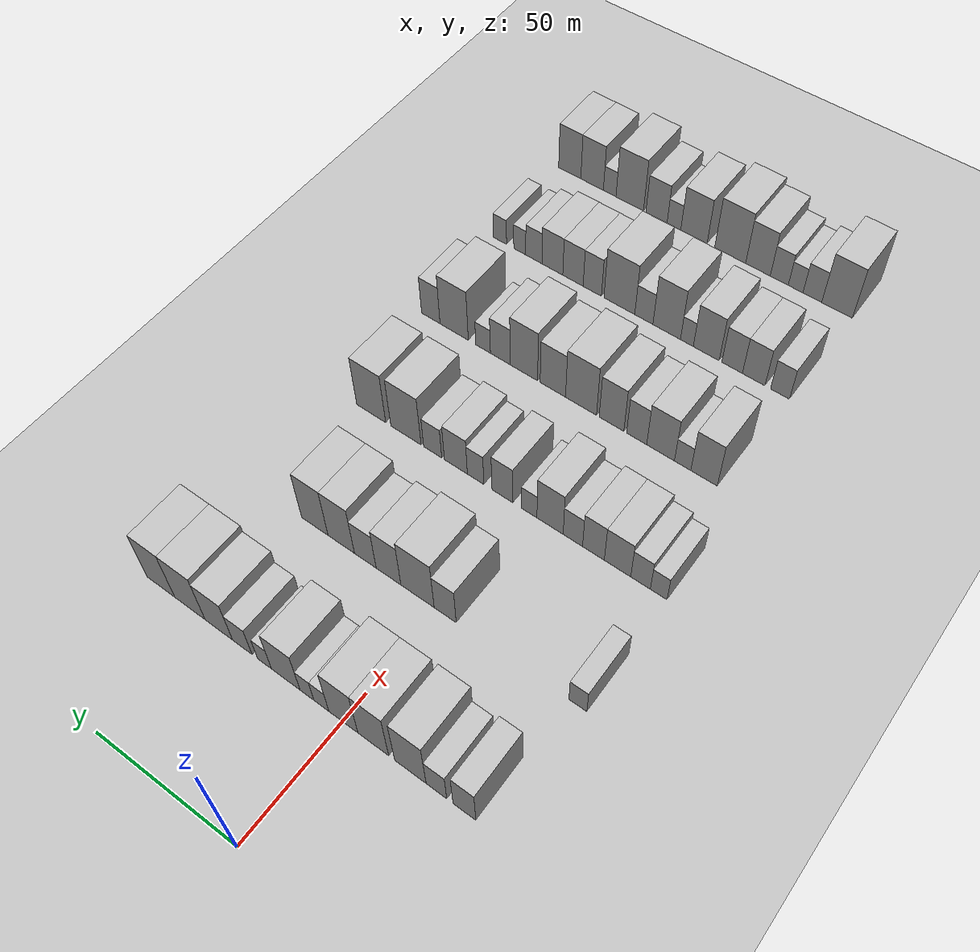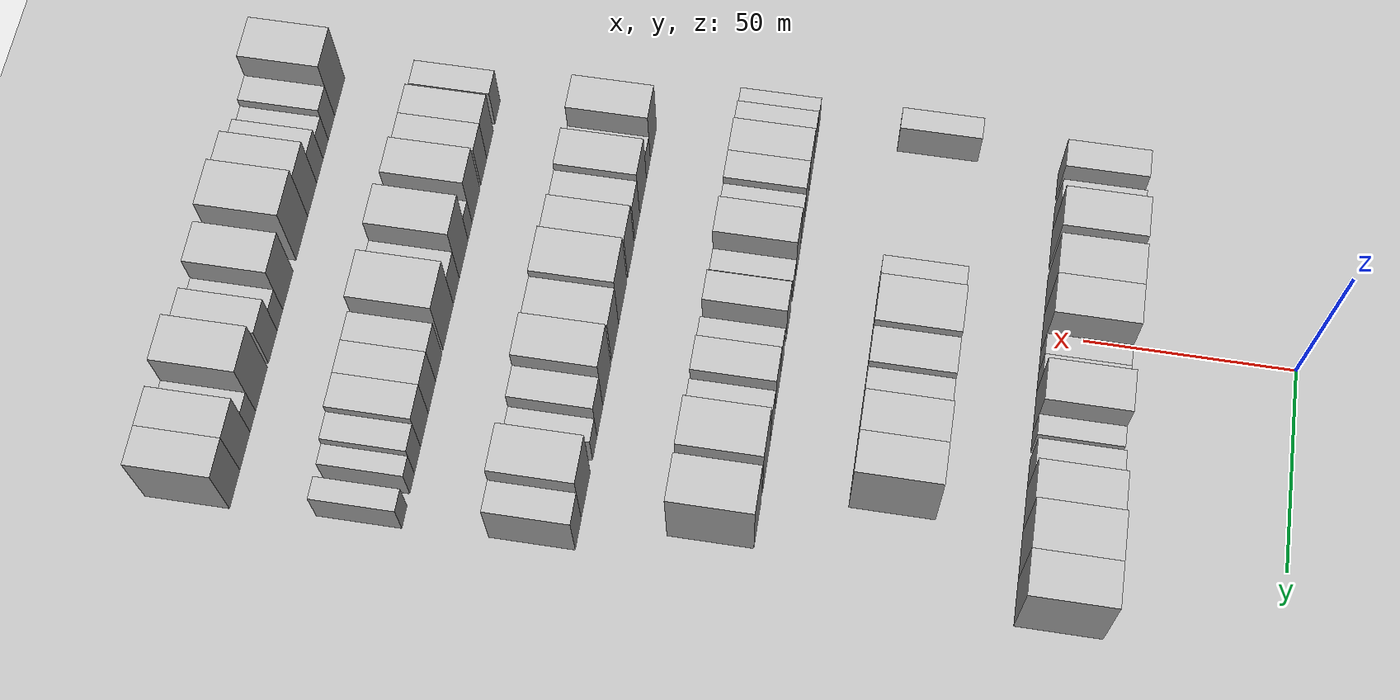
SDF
<sdf version="1.6">
 <world name="default">
  <include><name>ground_plane_1</name><uri>model://HANNAS_ground_plane</uri></include>
  <include>
   <name>ground_plane_2</name>
   <uri>model://HANNAS_ground_plane</uri>
   <pose>100 0 0  0 0 0</pose>
  </include>
  <model name="building_63">
   <static>1</static>
   <pose>50.0000 -40.3135 0 0.000000 0.000000 0.000000</pose>
   <link name="link">
    <pose>0 0 9.00 0 0 0</pose>
    <collision name="collision"><geometry><box><size>20.0000 7.2192 18.0000</size></box></geometry></collision>
    <visual name="visual">
     <cast_shadows>0</cast_shadows>
     <geometry><box><size>20.0000 7.2192 18.0000</size></box></geometry>
     <material>
      <script>
       <uri>model://HANNAS_wall/materials/scripts</uri>
       <uri>model://HANNAS_wall/materials/textures</uri>
       <name>vrc/HANNAS_wall</name>
      </script>
     </material>
    </visual>
   </link>
  </model>
  <model name="building_64">
   <static>1</static>
   <pose>50.0000 -31.3735 0 0.000000 0.000000 0.000000</pose>
   <link name="link">
    <pose>0 0 7.50 0 0 0</pose>
    <collision name="collision"><geometry><box><size>20.0000 6.6608 15.0000</size></box></geometry></collision>
    <visual name="visual">
     <cast_shadows>0</cast_shadows>
     <geometry><box><size>20.0000 6.6608 15.0000</size></box></geometry>
     <material>
      <script>
       <uri>model://HANNAS_wall/materials/scripts</uri>
       <uri>model://HANNAS_wall/materials/textures</uri>
       <name>vrc/HANNAS_wall</name>
      </script>
     </material>
    </visual>
   </link>
  </model>
  <model name="building_65">
   <static>1</static>
   <pose>50.0000 -22.8685 0 0.000000 0.000000 0.000000</pose>
   <link name="link">
    <pose>0 0 12.00 0 0 0</pose>
    <collision name="collision"><geometry><box><size>20.0000 10.3492 24.0000</size></box></geometry></collision>
    <visual name="visual">
     <cast_shadows>0</cast_shadows>
     <geometry><box><size>20.0000 10.3492 24.0000</size></box></geometry>
     <material>
      <script>
       <uri>model://HANNAS_wall/materials/scripts</uri>
       <uri>model://HANNAS_wall/materials/textures</uri>
       <name>vrc/HANNAS_wall</name>
      </script>
     </material>
    </visual>
   </link>
  </model>
  <model name="building_66">
   <static>1</static>
   <pose>50.0000 -10.5252 0 0.000000 0.000000 0.000000</pose>
   <link name="link">
    <pose>0 0 12.00 0 0 0</pose>
    <collision name="collision"><geometry><box><size>20.0000 10.3374 24.0000</size></box></geometry></collision>
    <visual name="visual">
     <cast_shadows>0</cast_shadows>
     <geometry><box><size>20.0000 10.3374 24.0000</size></box></geometry>
     <material>
      <script>
       <uri>model://HANNAS_wall/materials/scripts</uri>
       <uri>model://HANNAS_wall/materials/textures</uri>
       <name>vrc/HANNAS_wall</name>
      </script>
     </material>
    </visual>
   </link>
  </model>
  <model name="building_67">
   <static>1</static>
   <pose>50.0000 -0.3595 0 0.000000 0.000000 0.000000</pose>
   <link name="link">
    <pose>0 0 12.00 0 0 0</pose>
    <collision name="collision"><geometry><box><size>20.0000 9.9942 24.0000</size></box></geometry></collision>
    <visual name="visual">
     <cast_shadows>0</cast_shadows>
     <geometry><box><size>20.0000 9.9942 24.0000</size></box></geometry>
     <material>
      <script>
       <uri>model://HANNAS_wall/materials/scripts</uri>
       <uri>model://HANNAS_wall/materials/textures</uri>
       <name>vrc/HANNAS_wall</name>
      </script>
     </material>
    </visual>
   </link>
  </model>
  <model name="building_68">
   <static>1</static>
   <pose>50.0000 7.2241 0 0.000000 0.000000 0.000000</pose>
   <link name="link">
    <pose>0 0 6.00 0 0 0</pose>
    <collision name="collision"><geometry><box><size>20.0000 5.1729 12.0000</size></box></geometry></collision>
    <visual name="visual">
     <cast_shadows>0</cast_shadows>
     <geometry><box><size>20.0000 5.1729 12.0000</size></box></geometry>
     <material>
      <script>
       <uri>model://HANNAS_wall/materials/scripts</uri>
       <uri>model://HANNAS_wall/materials/textures</uri>
       <name>vrc/HANNAS_wall</name>
      </script>
     </material>
    </visual>
   </link>
  </model>
  <model name="building_69">
   <static>1</static>
   <pose>50.0000 12.2758 0 0.000000 0.000000 0.000000</pose>
   <link name="link">
    <pose>0 0 6.00 0 0 0</pose>
    <collision name="collision"><geometry><box><size>20.0000 4.9305 12.0000</size></box></geometry></collision>
    <visual name="visual">
     <cast_shadows>0</cast_shadows>
     <geometry><box><size>20.0000 4.9305 12.0000</size></box></geometry>
     <material>
      <script>
       <uri>model://HANNAS_wall/materials/scripts</uri>
       <uri>model://HANNAS_wall/materials/textures</uri>
       <name>vrc/HANNAS_wall</name>
      </script>
     </material>
    </visual>
   </link>
  </model>
  <model name="building_70">
   <static>1</static>
   <pose>50.0000 19.8492 0 0.000000 0.000000 0.000000</pose>
   <link name="link">
    <pose>0 0 10.50 0 0 0</pose>
    <collision name="collision"><geometry><box><size>20.0000 10.2163 21.0000</size></box></geometry></collision>
    <visual name="visual">
     <cast_shadows>0</cast_shadows>
     <geometry><box><size>20.0000 10.2163 21.0000</size></box></geometry>
     <material>
      <script>
       <uri>model://HANNAS_wall/materials/scripts</uri>
       <uri>model://HANNAS_wall/materials/textures</uri>
       <name>vrc/HANNAS_wall</name>
      </script>
     </material>
    </visual>
   </link>
  </model>
  <model name="building_71">
   <static>1</static>
   <pose>50.0000 27.4786 0 0.000000 0.000000 0.000000</pose>
   <link name="link">
    <pose>0 0 6.00 0 0 0</pose>
    <collision name="collision"><geometry><box><size>20.0000 5.0426 12.0000</size></box></geometry></collision>
    <visual name="visual">
     <cast_shadows>0</cast_shadows>
     <geometry><box><size>20.0000 5.0426 12.0000</size></box></geometry>
     <material>
      <script>
       <uri>model://HANNAS_wall/materials/scripts</uri>
       <uri>model://HANNAS_wall/materials/textures</uri>
       <name>vrc/HANNAS_wall</name>
      </script>
     </material>
    </visual>
   </link>
  </model>
  <model name="building_72">
   <static>1</static>
   <pose>50.0000 35.5905 0 0.000000 0.000000 0.000000</pose>
   <link name="link">
    <pose>0 0 7.50 0 0 0</pose>
    <collision name="collision"><geometry><box><size>20.0000 7.1812 15.0000</size></box></geometry></collision>
    <visual name="visual">
     <cast_shadows>0</cast_shadows>
     <geometry><box><size>20.0000 7.1812 15.0000</size></box></geometry>
     <material>
      <script>
       <uri>model://HANNAS_wall/materials/scripts</uri>
       <uri>model://HANNAS_wall/materials/textures</uri>
       <name>vrc/HANNAS_wall</name>
      </script>
     </material>
    </visual>
   </link>
  </model>
  <model name="building_73">
   <static>1</static>
   <pose>50.0000 44.3305 0 0.000000 0.000000 0.000000</pose>
   <link name="link">
    <pose>0 0 10.50 0 0 0</pose>
    <collision name="collision"><geometry><box><size>20.0000 10.2987 21.0000</size></box></geometry></collision>
    <visual name="visual">
     <cast_shadows>0</cast_shadows>
     <geometry><box><size>20.0000 10.2987 21.0000</size></box></geometry>
     <material>
      <script>
       <uri>model://HANNAS_wall/materials/scripts</uri>
       <uri>model://HANNAS_wall/materials/textures</uri>
       <name>vrc/HANNAS_wall</name>
      </script>
     </material>
    </visual>
   </link>
  </model>
  <model name="building_74">
   <static>1</static>
   <pose>50.0000 55.2970 0 0.000000 0.000000 0.000000</pose>
   <link name="link">
    <pose>0 0 12.00 0 0 0</pose>
    <collision name="collision"><geometry><box><size>20.0000 11.6342 24.0000</size></box></geometry></collision>
    <visual name="visual">
     <cast_shadows>0</cast_shadows>
     <geometry><box><size>20.0000 11.6342 24.0000</size></box></geometry>
     <material>
      <script>
       <uri>model://HANNAS_wall/materials/scripts</uri>
       <uri>model://HANNAS_wall/materials/textures</uri>
       <name>vrc/HANNAS_wall</name>
      </script>
     </material>
    </visual>
   </link>
  </model>
  <model name="building_75">
   <static>1</static>
   <pose>50.0000 66.5046 0 0.000000 0.000000 0.000000</pose>
   <link name="link">
    <pose>0 0 12.00 0 0 0</pose>
    <collision name="collision"><geometry><box><size>20.0000 10.7811 24.0000</size></box></geometry></collision>
    <visual name="visual">
     <cast_shadows>0</cast_shadows>
     <geometry><box><size>20.0000 10.7811 24.0000</size></box></geometry>
     <material>
      <script>
       <uri>model://HANNAS_wall/materials/scripts</uri>
       <uri>model://HANNAS_wall/materials/textures</uri>
       <name>vrc/HANNAS_wall</name>
      </script>
     </material>
    </visual>
   </link>
  </model>
  <model name="building_198">
   <static>1</static>
   <pose>90.0000 -47.3290 0 0.000000 0.000000 0.000000</pose>
   <link name="link">
    <pose>0 0 6.00 0 0 0</pose>
    <collision name="collision"><geometry><box><size>20.0000 5.7841 12.0000</size></box></geometry></collision>
    <visual name="visual">
     <cast_shadows>0</cast_shadows>
     <geometry><box><size>20.0000 5.7841 12.0000</size></box></geometry>
     <material>
      <script>
       <uri>model://HANNAS_wall/materials/scripts</uri>
       <uri>model://HANNAS_wall/materials/textures</uri>
       <name>vrc/HANNAS_wall</name>
      </script>
     </material>
    </visual>
   </link>
  </model>
  <model name="building_199">
   <static>1</static>
   <pose>90.0000 -2.9000 0 0.000000 0.000000 0.000000</pose>
   <link name="link">
    <pose>0 0 9.00 0 0 0</pose>
    <collision name="collision"><geometry><box><size>20.0000 7.6913 18.0000</size></box></geometry></collision>
    <visual name="visual">
     <cast_shadows>0</cast_shadows>
     <geometry><box><size>20.0000 7.6913 18.0000</size></box></geometry>
     <material>
      <script>
       <uri>model://HANNAS_wall/materials/scripts</uri>
       <uri>model://HANNAS_wall/materials/textures</uri>
       <name>vrc/HANNAS_wall</name>
      </script>
     </material>
    </visual>
   </link>
  </model>
  <model name="building_200">
   <static>1</static>
   <pose>90.0000 6.8621 0 0.000000 0.000000 0.000000</pose>
   <link name="link">
    <pose>0 0 12.00 0 0 0</pose>
    <collision name="collision"><geometry><box><size>20.0000 11.8329 24.0000</size></box></geometry></collision>
    <visual name="visual">
     <cast_shadows>0</cast_shadows>
     <geometry><box><size>20.0000 11.8329 24.0000</size></box></geometry>
     <material>
      <script>
       <uri>model://HANNAS_wall/materials/scripts</uri>
       <uri>model://HANNAS_wall/materials/textures</uri>
       <name>vrc/HANNAS_wall</name>
      </script>
     </material>
    </visual>
   </link>
  </model>
  <model name="building_201">
   <static>1</static>
   <pose>90.0000 17.2681 0 0.000000 0.000000 0.000000</pose>
   <link name="link">
    <pose>0 0 10.50 0 0 0</pose>
    <collision name="collision"><geometry><box><size>20.0000 8.9790 21.0000</size></box></geometry></collision>
    <visual name="visual">
     <cast_shadows>0</cast_shadows>
     <geometry><box><size>20.0000 8.9790 21.0000</size></box></geometry>
     <material>
      <script>
       <uri>model://HANNAS_wall/materials/scripts</uri>
       <uri>model://HANNAS_wall/materials/textures</uri>
       <name>vrc/HANNAS_wall</name>
      </script>
     </material>
    </visual>
   </link>
  </model>
  <model name="building_202">
   <static>1</static>
   <pose>90.0000 25.7555 0 0.000000 0.000000 0.000000</pose>
   <link name="link">
    <pose>0 0 9.00 0 0 0</pose>
    <collision name="collision"><geometry><box><size>20.0000 7.9957 18.0000</size></box></geometry></collision>
    <visual name="visual">
     <cast_shadows>0</cast_shadows>
     <geometry><box><size>20.0000 7.9957 18.0000</size></box></geometry>
     <material>
      <script>
       <uri>model://HANNAS_wall/materials/scripts</uri>
       <uri>model://HANNAS_wall/materials/textures</uri>
       <name>vrc/HANNAS_wall</name>
      </script>
     </material>
    </visual>
   </link>
  </model>
  <model name="building_203">
   <static>1</static>
   <pose>90.0000 34.6981 0 0.000000 0.000000 0.000000</pose>
   <link name="link">
    <pose>0 0 12.00 0 0 0</pose>
    <collision name="collision"><geometry><box><size>20.0000 9.8894 24.0000</size></box></geometry></collision>
    <visual name="visual">
     <cast_shadows>0</cast_shadows>
     <geometry><box><size>20.0000 9.8894 24.0000</size></box></geometry>
     <material>
      <script>
       <uri>model://HANNAS_wall/materials/scripts</uri>
       <uri>model://HANNAS_wall/materials/textures</uri>
       <name>vrc/HANNAS_wall</name>
      </script>
     </material>
    </visual>
   </link>
  </model>
  <model name="building_204">
   <static>1</static>
   <pose>90.0000 44.6729 0 0.000000 0.000000 0.000000</pose>
   <link name="link">
    <pose>0 0 12.00 0 0 0</pose>
    <collision name="collision"><geometry><box><size>20.0000 10.0603 24.0000</size></box></geometry></collision>
    <visual name="visual">
     <cast_shadows>0</cast_shadows>
     <geometry><box><size>20.0000 10.0603 24.0000</size></box></geometry>
     <material>
      <script>
       <uri>model://HANNAS_wall/materials/scripts</uri>
       <uri>model://HANNAS_wall/materials/textures</uri>
       <name>vrc/HANNAS_wall</name>
      </script>
     </material>
    </visual>
   </link>
  </model>
  <model name="building_330">
   <static>1</static>
   <pose>130.0000 -47.0130 0 0.000000 0.000000 0.000000</pose>
   <link name="link">
    <pose>0 0 6.00 0 0 0</pose>
    <collision name="collision"><geometry><box><size>20.0000 5.5264 12.0000</size></box></geometry></collision>
    <visual name="visual">
     <cast_shadows>0</cast_shadows>
     <geometry><box><size>20.0000 5.5264 12.0000</size></box></geometry>
     <material>
      <script>
       <uri>model://HANNAS_wall/materials/scripts</uri>
       <uri>model://HANNAS_wall/materials/textures</uri>
       <name>vrc/HANNAS_wall</name>
      </script>
     </material>
    </visual>
   </link>
  </model>
  <model name="building_331">
   <static>1</static>
   <pose>130.0000 -40.9860 0 0.000000 0.000000 0.000000</pose>
   <link name="link">
    <pose>0 0 7.50 0 0 0</pose>
    <collision name="collision"><geometry><box><size>20.0000 6.5276 15.0000</size></box></geometry></collision>
    <visual name="visual">
     <cast_shadows>0</cast_shadows>
     <geometry><box><size>20.0000 6.5276 15.0000</size></box></geometry>
     <material>
      <script>
       <uri>model://HANNAS_wall/materials/scripts</uri>
       <uri>model://HANNAS_wall/materials/textures</uri>
       <name>vrc/HANNAS_wall</name>
      </script>
     </material>
    </visual>
   </link>
  </model>
  <model name="building_332">
   <static>1</static>
   <pose>130.0000 -33.2503 0 0.000000 0.000000 0.000000</pose>
   <link name="link">
    <pose>0 0 9.00 0 0 0</pose>
    <collision name="collision"><geometry><box><size>20.0000 8.9437 18.0000</size></box></geometry></collision>
    <visual name="visual">
     <cast_shadows>0</cast_shadows>
     <geometry><box><size>20.0000 8.9437 18.0000</size></box></geometry>
     <material>
      <script>
       <uri>model://HANNAS_wall/materials/scripts</uri>
       <uri>model://HANNAS_wall/materials/textures</uri>
       <name>vrc/HANNAS_wall</name>
      </script>
     </material>
    </visual>
   </link>
  </model>
  <model name="building_333">
   <static>1</static>
   <pose>130.0000 -25.0436 0 0.000000 0.000000 0.000000</pose>
   <link name="link">
    <pose>0 0 9.00 0 0 0</pose>
    <collision name="collision"><geometry><box><size>20.0000 7.4699 18.0000</size></box></geometry></collision>
    <visual name="visual">
     <cast_shadows>0</cast_shadows>
     <geometry><box><size>20.0000 7.4699 18.0000</size></box></geometry>
     <material>
      <script>
       <uri>model://HANNAS_wall/materials/scripts</uri>
       <uri>model://HANNAS_wall/materials/textures</uri>
       <name>vrc/HANNAS_wall</name>
      </script>
     </material>
    </visual>
   </link>
  </model>
  <model name="building_334">
   <static>1</static>
   <pose>130.0000 -17.9359 0 0.000000 0.000000 0.000000</pose>
   <link name="link">
    <pose>0 0 7.50 0 0 0</pose>
    <collision name="collision"><geometry><box><size>20.0000 6.7455 15.0000</size></box></geometry></collision>
    <visual name="visual">
     <cast_shadows>0</cast_shadows>
     <geometry><box><size>20.0000 6.7455 15.0000</size></box></geometry>
     <material>
      <script>
       <uri>model://HANNAS_wall/materials/scripts</uri>
       <uri>model://HANNAS_wall/materials/textures</uri>
       <name>vrc/HANNAS_wall</name>
      </script>
     </material>
    </visual>
   </link>
  </model>
  <model name="building_335">
   <static>1</static>
   <pose>130.0000 -9.9310 0 0.000000 0.000000 0.000000</pose>
   <link name="link">
    <pose>0 0 10.50 0 0 0</pose>
    <collision name="collision"><geometry><box><size>20.0000 9.2642 21.0000</size></box></geometry></collision>
    <visual name="visual">
     <cast_shadows>0</cast_shadows>
     <geometry><box><size>20.0000 9.2642 21.0000</size></box></geometry>
     <material>
      <script>
       <uri>model://HANNAS_wall/materials/scripts</uri>
       <uri>model://HANNAS_wall/materials/textures</uri>
       <name>vrc/HANNAS_wall</name>
      </script>
     </material>
    </visual>
   </link>
  </model>
  <model name="building_336">
   <static>1</static>
   <pose>130.0000 -2.4936 0 0.000000 0.000000 0.000000</pose>
   <link name="link">
    <pose>0 0 6.00 0 0 0</pose>
    <collision name="collision"><geometry><box><size>20.0000 5.6105 12.0000</size></box></geometry></collision>
    <visual name="visual">
     <cast_shadows>0</cast_shadows>
     <geometry><box><size>20.0000 5.6105 12.0000</size></box></geometry>
     <material>
      <script>
       <uri>model://HANNAS_wall/materials/scripts</uri>
       <uri>model://HANNAS_wall/materials/textures</uri>
       <name>vrc/HANNAS_wall</name>
      </script>
     </material>
    </visual>
   </link>
  </model>
  <model name="building_337">
   <static>1</static>
   <pose>130.0000 7.1170 0 0.000000 0.000000 0.000000</pose>
   <link name="link">
    <pose>0 0 9.00 0 0 0</pose>
    <collision name="collision"><geometry><box><size>20.0000 7.6108 18.0000</size></box></geometry></collision>
    <visual name="visual">
     <cast_shadows>0</cast_shadows>
     <geometry><box><size>20.0000 7.6108 18.0000</size></box></geometry>
     <material>
      <script>
       <uri>model://HANNAS_wall/materials/scripts</uri>
       <uri>model://HANNAS_wall/materials/textures</uri>
       <name>vrc/HANNAS_wall</name>
      </script>
     </material>
    </visual>
   </link>
  </model>
  <model name="building_338">
   <static>1</static>
   <pose>130.0000 16.9801 0 0.000000 0.000000 0.000000</pose>
   <link name="link">
    <pose>0 0 7.50 0 0 0</pose>
    <collision name="collision"><geometry><box><size>20.0000 6.1153 15.0000</size></box></geometry></collision>
    <visual name="visual">
     <cast_shadows>0</cast_shadows>
     <geometry><box><size>20.0000 6.1153 15.0000</size></box></geometry>
     <material>
      <script>
       <uri>model://HANNAS_wall/materials/scripts</uri>
       <uri>model://HANNAS_wall/materials/textures</uri>
       <name>vrc/HANNAS_wall</name>
      </script>
     </material>
    </visual>
   </link>
  </model>
  <model name="building_339">
   <static>1</static>
   <pose>130.0000 24.3437 0 0.000000 0.000000 0.000000</pose>
   <link name="link">
    <pose>0 0 9.00 0 0 0</pose>
    <collision name="collision"><geometry><box><size>20.0000 8.6120 18.0000</size></box></geometry></collision>
    <visual name="visual">
     <cast_shadows>0</cast_shadows>
     <geometry><box><size>20.0000 8.6120 18.0000</size></box></geometry>
     <material>
      <script>
       <uri>model://HANNAS_wall/materials/scripts</uri>
       <uri>model://HANNAS_wall/materials/textures</uri>
       <name>vrc/HANNAS_wall</name>
      </script>
     </material>
    </visual>
   </link>
  </model>
  <model name="building_340">
   <static>1</static>
   <pose>130.0000 33.0859 0 0.000000 0.000000 0.000000</pose>
   <link name="link">
    <pose>0 0 7.50 0 0 0</pose>
    <collision name="collision"><geometry><box><size>20.0000 6.8724 15.0000</size></box></geometry></collision>
    <visual name="visual">
     <cast_shadows>0</cast_shadows>
     <geometry><box><size>20.0000 6.8724 15.0000</size></box></geometry>
     <material>
      <script>
       <uri>model://HANNAS_wall/materials/scripts</uri>
       <uri>model://HANNAS_wall/materials/textures</uri>
       <name>vrc/HANNAS_wall</name>
      </script>
     </material>
    </visual>
   </link>
  </model>
  <model name="building_341">
   <static>1</static>
   <pose>130.0000 43.3947 0 0.000000 0.000000 0.000000</pose>
   <link name="link">
    <pose>0 0 12.00 0 0 0</pose>
    <collision name="collision"><geometry><box><size>20.0000 11.7452 24.0000</size></box></geometry></collision>
    <visual name="visual">
     <cast_shadows>0</cast_shadows>
     <geometry><box><size>20.0000 11.7452 24.0000</size></box></geometry>
     <material>
      <script>
       <uri>model://HANNAS_wall/materials/scripts</uri>
       <uri>model://HANNAS_wall/materials/textures</uri>
       <name>vrc/HANNAS_wall</name>
      </script>
     </material>
    </visual>
   </link>
  </model>
  <model name="building_342">
   <static>1</static>
   <pose>130.0000 57.0087 0 0.000000 0.000000 0.000000</pose>
   <link name="link">
    <pose>0 0 12.00 0 0 0</pose>
    <collision name="collision"><geometry><box><size>20.0000 11.4830 24.0000</size></box></geometry></collision>
    <visual name="visual">
     <cast_shadows>0</cast_shadows>
     <geometry><box><size>20.0000 11.4830 24.0000</size></box></geometry>
     <material>
      <script>
       <uri>model://HANNAS_wall/materials/scripts</uri>
       <uri>model://HANNAS_wall/materials/textures</uri>
       <name>vrc/HANNAS_wall</name>
      </script>
     </material>
    </visual>
   </link>
  </model>
  <model name="building_463">
   <static>1</static>
   <pose>170.0000 -37.2655 0 0.000000 0.000000 0.000000</pose>
   <link name="link">
    <pose>0 0 10.50 0 0 0</pose>
    <collision name="collision"><geometry><box><size>20.0000 9.1495 21.0000</size></box></geometry></collision>
    <visual name="visual">
     <cast_shadows>0</cast_shadows>
     <geometry><box><size>20.0000 9.1495 21.0000</size></box></geometry>
     <material>
      <script>
       <uri>model://HANNAS_wall/materials/scripts</uri>
       <uri>model://HANNAS_wall/materials/textures</uri>
       <name>vrc/HANNAS_wall</name>
      </script>
     </material>
    </visual>
   </link>
  </model>
  <model name="building_464">
   <static>1</static>
   <pose>170.0000 -29.8364 0 0.000000 0.000000 0.000000</pose>
   <link name="link">
    <pose>0 0 6.00 0 0 0</pose>
    <collision name="collision"><geometry><box><size>20.0000 5.7087 12.0000</size></box></geometry></collision>
    <visual name="visual">
     <cast_shadows>0</cast_shadows>
     <geometry><box><size>20.0000 5.7087 12.0000</size></box></geometry>
     <material>
      <script>
       <uri>model://HANNAS_wall/materials/scripts</uri>
       <uri>model://HANNAS_wall/materials/textures</uri>
       <name>vrc/HANNAS_wall</name>
      </script>
     </material>
    </visual>
   </link>
  </model>
  <model name="building_465">
   <static>1</static>
   <pose>170.0000 -22.0622 0 0.000000 0.000000 0.000000</pose>
   <link name="link">
    <pose>0 0 10.50 0 0 0</pose>
    <collision name="collision"><geometry><box><size>20.0000 9.8398 21.0000</size></box></geometry></collision>
    <visual name="visual">
     <cast_shadows>0</cast_shadows>
     <geometry><box><size>20.0000 9.8398 21.0000</size></box></geometry>
     <material>
      <script>
       <uri>model://HANNAS_wall/materials/scripts</uri>
       <uri>model://HANNAS_wall/materials/textures</uri>
       <name>vrc/HANNAS_wall</name>
      </script>
     </material>
    </visual>
   </link>
  </model>
  <model name="building_466">
   <static>1</static>
   <pose>170.0000 -13.5358 0 0.000000 0.000000 0.000000</pose>
   <link name="link">
    <pose>0 0 9.00 0 0 0</pose>
    <collision name="collision"><geometry><box><size>20.0000 7.2129 18.0000</size></box></geometry></collision>
    <visual name="visual">
     <cast_shadows>0</cast_shadows>
     <geometry><box><size>20.0000 7.2129 18.0000</size></box></geometry>
     <material>
      <script>
       <uri>model://HANNAS_wall/materials/scripts</uri>
       <uri>model://HANNAS_wall/materials/textures</uri>
       <name>vrc/HANNAS_wall</name>
      </script>
     </material>
    </visual>
   </link>
  </model>
  <model name="building_467">
   <static>1</static>
   <pose>170.0000 -4.4265 0 0.000000 0.000000 0.000000</pose>
   <link name="link">
    <pose>0 0 10.50 0 0 0</pose>
    <collision name="collision"><geometry><box><size>20.0000 9.0056 21.0000</size></box></geometry></collision>
    <visual name="visual">
     <cast_shadows>0</cast_shadows>
     <geometry><box><size>20.0000 9.0056 21.0000</size></box></geometry>
     <material>
      <script>
       <uri>model://HANNAS_wall/materials/scripts</uri>
       <uri>model://HANNAS_wall/materials/textures</uri>
       <name>vrc/HANNAS_wall</name>
      </script>
     </material>
    </visual>
   </link>
  </model>
  <model name="building_468">
   <static>1</static>
   <pose>170.0000 6.8356 0 0.000000 0.000000 0.000000</pose>
   <link name="link">
    <pose>0 0 12.00 0 0 0</pose>
    <collision name="collision"><geometry><box><size>20.0000 11.5188 24.0000</size></box></geometry></collision>
    <visual name="visual">
     <cast_shadows>0</cast_shadows>
     <geometry><box><size>20.0000 11.5188 24.0000</size></box></geometry>
     <material>
      <script>
       <uri>model://HANNAS_wall/materials/scripts</uri>
       <uri>model://HANNAS_wall/materials/textures</uri>
       <name>vrc/HANNAS_wall</name>
      </script>
     </material>
    </visual>
   </link>
  </model>
  <model name="building_469">
   <static>1</static>
   <pose>170.0000 17.4008 0 0.000000 0.000000 0.000000</pose>
   <link name="link">
    <pose>0 0 10.50 0 0 0</pose>
    <collision name="collision"><geometry><box><size>20.0000 9.6115 21.0000</size></box></geometry></collision>
    <visual name="visual">
     <cast_shadows>0</cast_shadows>
     <geometry><box><size>20.0000 9.6115 21.0000</size></box></geometry>
     <material>
      <script>
       <uri>model://HANNAS_wall/materials/scripts</uri>
       <uri>model://HANNAS_wall/materials/textures</uri>
       <name>vrc/HANNAS_wall</name>
      </script>
     </material>
    </visual>
   </link>
  </model>
  <model name="building_470">
   <static>1</static>
   <pose>170.0000 28.4941 0 0.000000 0.000000 0.000000</pose>
   <link name="link">
    <pose>0 0 12.00 0 0 0</pose>
    <collision name="collision"><geometry><box><size>20.0000 10.5752 24.0000</size></box></geometry></collision>
    <visual name="visual">
     <cast_shadows>0</cast_shadows>
     <geometry><box><size>20.0000 10.5752 24.0000</size></box></geometry>
     <material>
      <script>
       <uri>model://HANNAS_wall/materials/scripts</uri>
       <uri>model://HANNAS_wall/materials/textures</uri>
       <name>vrc/HANNAS_wall</name>
      </script>
     </material>
    </visual>
   </link>
  </model>
  <model name="building_471">
   <static>1</static>
   <pose>170.0000 37.6404 0 0.000000 0.000000 0.000000</pose>
   <link name="link">
    <pose>0 0 9.00 0 0 0</pose>
    <collision name="collision"><geometry><box><size>20.0000 7.7175 18.0000</size></box></geometry></collision>
    <visual name="visual">
     <cast_shadows>0</cast_shadows>
     <geometry><box><size>20.0000 7.7175 18.0000</size></box></geometry>
     <material>
      <script>
       <uri>model://HANNAS_wall/materials/scripts</uri>
       <uri>model://HANNAS_wall/materials/textures</uri>
       <name>vrc/HANNAS_wall</name>
      </script>
     </material>
    </visual>
   </link>
  </model>
  <model name="building_472">
   <static>1</static>
   <pose>170.0000 44.4030 0 0.000000 0.000000 0.000000</pose>
   <link name="link">
    <pose>0 0 6.00 0 0 0</pose>
    <collision name="collision"><geometry><box><size>20.0000 5.8078 12.0000</size></box></geometry></collision>
    <visual name="visual">
     <cast_shadows>0</cast_shadows>
     <geometry><box><size>20.0000 5.8078 12.0000</size></box></geometry>
     <material>
      <script>
       <uri>model://HANNAS_wall/materials/scripts</uri>
       <uri>model://HANNAS_wall/materials/textures</uri>
       <name>vrc/HANNAS_wall</name>
      </script>
     </material>
    </visual>
   </link>
  </model>
  <model name="building_473">
   <static>1</static>
   <pose>170.0000 56.0159 0 0.000000 0.000000 0.000000</pose>
   <link name="link">
    <pose>0 0 12.00 0 0 0</pose>
    <collision name="collision"><geometry><box><size>20.0000 11.4180 24.0000</size></box></geometry></collision>
    <visual name="visual">
     <cast_shadows>0</cast_shadows>
     <geometry><box><size>20.0000 11.4180 24.0000</size></box></geometry>
     <material>
      <script>
       <uri>model://HANNAS_wall/materials/scripts</uri>
       <uri>model://HANNAS_wall/materials/textures</uri>
       <name>vrc/HANNAS_wall</name>
      </script>
     </material>
    </visual>
   </link>
  </model>
  <model name="building_474">
   <static>1</static>
   <pose>170.0000 65.4871 0 0.000000 0.000000 0.000000</pose>
   <link name="link">
    <pose>0 0 9.00 0 0 0</pose>
    <collision name="collision"><geometry><box><size>20.0000 7.5244 18.0000</size></box></geometry></collision>
    <visual name="visual">
     <cast_shadows>0</cast_shadows>
     <geometry><box><size>20.0000 7.5244 18.0000</size></box></geometry>
     <material>
      <script>
       <uri>model://HANNAS_wall/materials/scripts</uri>
       <uri>model://HANNAS_wall/materials/textures</uri>
       <name>vrc/HANNAS_wall</name>
      </script>
     </material>
    </visual>
   </link>
  </model>
  <model name="building_594">
   <static>1</static>
   <pose>210.0000 -40.2054 0 0.000000 0.000000 0.000000</pose>
   <link name="link">
    <pose>0 0 7.50 0 0 0</pose>
    <collision name="collision"><geometry><box><size>20.0000 6.6782 15.0000</size></box></geometry></collision>
    <visual name="visual">
     <cast_shadows>0</cast_shadows>
     <geometry><box><size>20.0000 6.6782 15.0000</size></box></geometry>
     <material>
      <script>
       <uri>model://HANNAS_wall/materials/scripts</uri>
       <uri>model://HANNAS_wall/materials/textures</uri>
       <name>vrc/HANNAS_wall</name>
      </script>
     </material>
    </visual>
   </link>
  </model>
  <model name="building_595">
   <static>1</static>
   <pose>210.0000 -30.8378 0 0.000000 0.000000 0.000000</pose>
   <link name="link">
    <pose>0 0 9.00 0 0 0</pose>
    <collision name="collision"><geometry><box><size>20.0000 8.0569 18.0000</size></box></geometry></collision>
    <visual name="visual">
     <cast_shadows>0</cast_shadows>
     <geometry><box><size>20.0000 8.0569 18.0000</size></box></geometry>
     <material>
      <script>
       <uri>model://HANNAS_wall/materials/scripts</uri>
       <uri>model://HANNAS_wall/materials/textures</uri>
       <name>vrc/HANNAS_wall</name>
      </script>
     </material>
    </visual>
   </link>
  </model>
  <model name="building_596">
   <static>1</static>
   <pose>210.0000 -23.0789 0 0.000000 0.000000 0.000000</pose>
   <link name="link">
    <pose>0 0 9.00 0 0 0</pose>
    <collision name="collision"><geometry><box><size>20.0000 7.4611 18.0000</size></box></geometry></collision>
    <visual name="visual">
     <cast_shadows>0</cast_shadows>
     <geometry><box><size>20.0000 7.4611 18.0000</size></box></geometry>
     <material>
      <script>
       <uri>model://HANNAS_wall/materials/scripts</uri>
       <uri>model://HANNAS_wall/materials/textures</uri>
       <name>vrc/HANNAS_wall</name>
      </script>
     </material>
    </visual>
   </link>
  </model>
  <model name="building_597">
   <static>1</static>
   <pose>210.0000 -13.5892 0 0.000000 0.000000 0.000000</pose>
   <link name="link">
    <pose>0 0 10.50 0 0 0</pose>
    <collision name="collision"><geometry><box><size>20.0000 9.5182 21.0000</size></box></geometry></collision>
    <visual name="visual">
     <cast_shadows>0</cast_shadows>
     <geometry><box><size>20.0000 9.5182 21.0000</size></box></geometry>
     <material>
      <script>
       <uri>model://HANNAS_wall/materials/scripts</uri>
       <uri>model://HANNAS_wall/materials/textures</uri>
       <name>vrc/HANNAS_wall</name>
      </script>
     </material>
    </visual>
   </link>
  </model>
  <model name="building_598">
   <static>1</static>
   <pose>210.0000 -6.4296 0 0.000000 0.000000 0.000000</pose>
   <link name="link">
    <pose>0 0 6.00 0 0 0</pose>
    <collision name="collision"><geometry><box><size>20.0000 4.8011 12.0000</size></box></geometry></collision>
    <visual name="visual">
     <cast_shadows>0</cast_shadows>
     <geometry><box><size>20.0000 4.8011 12.0000</size></box></geometry>
     <material>
      <script>
       <uri>model://HANNAS_wall/materials/scripts</uri>
       <uri>model://HANNAS_wall/materials/textures</uri>
       <name>vrc/HANNAS_wall</name>
      </script>
     </material>
    </visual>
   </link>
  </model>
  <model name="building_599">
   <static>1</static>
   <pose>210.0000 1.1718 0 0.000000 0.000000 0.000000</pose>
   <link name="link">
    <pose>0 0 12.00 0 0 0</pose>
    <collision name="collision"><geometry><box><size>20.0000 10.4017 24.0000</size></box></geometry></collision>
    <visual name="visual">
     <cast_shadows>0</cast_shadows>
     <geometry><box><size>20.0000 10.4017 24.0000</size></box></geometry>
     <material>
      <script>
       <uri>model://HANNAS_wall/materials/scripts</uri>
       <uri>model://HANNAS_wall/materials/textures</uri>
       <name>vrc/HANNAS_wall</name>
      </script>
     </material>
    </visual>
   </link>
  </model>
  <model name="building_600">
   <static>1</static>
   <pose>210.0000 9.8463 0 0.000000 0.000000 0.000000</pose>
   <link name="link">
    <pose>0 0 7.50 0 0 0</pose>
    <collision name="collision"><geometry><box><size>20.0000 6.9473 15.0000</size></box></geometry></collision>
    <visual name="visual">
     <cast_shadows>0</cast_shadows>
     <geometry><box><size>20.0000 6.9473 15.0000</size></box></geometry>
     <material>
      <script>
       <uri>model://HANNAS_wall/materials/scripts</uri>
       <uri>model://HANNAS_wall/materials/textures</uri>
       <name>vrc/HANNAS_wall</name>
      </script>
     </material>
    </visual>
   </link>
  </model>
  <model name="building_601">
   <static>1</static>
   <pose>210.0000 19.3129 0 0.000000 0.000000 0.000000</pose>
   <link name="link">
    <pose>0 0 12.00 0 0 0</pose>
    <collision name="collision"><geometry><box><size>20.0000 11.9860 24.0000</size></box></geometry></collision>
    <visual name="visual">
     <cast_shadows>0</cast_shadows>
     <geometry><box><size>20.0000 11.9860 24.0000</size></box></geometry>
     <material>
      <script>
       <uri>model://HANNAS_wall/materials/scripts</uri>
       <uri>model://HANNAS_wall/materials/textures</uri>
       <name>vrc/HANNAS_wall</name>
      </script>
     </material>
    </visual>
   </link>
  </model>
  <model name="building_602">
   <static>1</static>
   <pose>210.0000 29.9130 0 0.000000 0.000000 0.000000</pose>
   <link name="link">
    <pose>0 0 9.00 0 0 0</pose>
    <collision name="collision"><geometry><box><size>20.0000 7.2142 18.0000</size></box></geometry></collision>
    <visual name="visual">
     <cast_shadows>0</cast_shadows>
     <geometry><box><size>20.0000 7.2142 18.0000</size></box></geometry>
     <material>
      <script>
       <uri>model://HANNAS_wall/materials/scripts</uri>
       <uri>model://HANNAS_wall/materials/textures</uri>
       <name>vrc/HANNAS_wall</name>
      </script>
     </material>
    </visual>
   </link>
  </model>
  <model name="building_603">
   <static>1</static>
   <pose>210.0000 37.5921 0 0.000000 0.000000 0.000000</pose>
   <link name="link">
    <pose>0 0 9.00 0 0 0</pose>
    <collision name="collision"><geometry><box><size>20.0000 8.1440 18.0000</size></box></geometry></collision>
    <visual name="visual">
     <cast_shadows>0</cast_shadows>
     <geometry><box><size>20.0000 8.1440 18.0000</size></box></geometry>
     <material>
      <script>
       <uri>model://HANNAS_wall/materials/scripts</uri>
       <uri>model://HANNAS_wall/materials/textures</uri>
       <name>vrc/HANNAS_wall</name>
      </script>
     </material>
    </visual>
   </link>
  </model>
  <model name="building_604">
   <static>1</static>
   <pose>210.0000 45.8955 0 0.000000 0.000000 0.000000</pose>
   <link name="link">
    <pose>0 0 9.00 0 0 0</pose>
    <collision name="collision"><geometry><box><size>20.0000 8.4627 18.0000</size></box></geometry></collision>
    <visual name="visual">
     <cast_shadows>0</cast_shadows>
     <geometry><box><size>20.0000 8.4627 18.0000</size></box></geometry>
     <material>
      <script>
       <uri>model://HANNAS_wall/materials/scripts</uri>
       <uri>model://HANNAS_wall/materials/textures</uri>
       <name>vrc/HANNAS_wall</name>
      </script>
     </material>
    </visual>
   </link>
  </model>
  <model name="building_605">
   <static>1</static>
   <pose>210.0000 53.4546 0 0.000000 0.000000 0.000000</pose>
   <link name="link">
    <pose>0 0 7.50 0 0 0</pose>
    <collision name="collision"><geometry><box><size>20.0000 6.6554 15.0000</size></box></geometry></collision>
    <visual name="visual">
     <cast_shadows>0</cast_shadows>
     <geometry><box><size>20.0000 6.6554 15.0000</size></box></geometry>
     <material>
      <script>
       <uri>model://HANNAS_wall/materials/scripts</uri>
       <uri>model://HANNAS_wall/materials/textures</uri>
       <name>vrc/HANNAS_wall</name>
      </script>
     </material>
    </visual>
   </link>
  </model>
  <model name="building_606">
   <static>1</static>
   <pose>210.0000 59.2566 0 0.000000 0.000000 0.000000</pose>
   <link name="link">
    <pose>0 0 6.00 0 0 0</pose>
    <collision name="collision"><geometry><box><size>20.0000 4.9487 12.0000</size></box></geometry></collision>
    <visual name="visual">
     <cast_shadows>0</cast_shadows>
     <geometry><box><size>20.0000 4.9487 12.0000</size></box></geometry>
     <material>
      <script>
       <uri>model://HANNAS_wall/materials/scripts</uri>
       <uri>model://HANNAS_wall/materials/textures</uri>
       <name>vrc/HANNAS_wall</name>
      </script>
     </material>
    </visual>
   </link>
  </model>
  <model name="building_607">
   <static>1</static>
   <pose>210.0000 67.4570 0 0.000000 0.000000 0.000000</pose>
   <link name="link">
    <pose>0 0 6.00 0 0 0</pose>
    <collision name="collision"><geometry><box><size>20.0000 5.4522 12.0000</size></box></geometry></collision>
    <visual name="visual">
     <cast_shadows>0</cast_shadows>
     <geometry><box><size>20.0000 5.4522 12.0000</size></box></geometry>
     <material>
      <script>
       <uri>model://HANNAS_wall/materials/scripts</uri>
       <uri>model://HANNAS_wall/materials/textures</uri>
       <name>vrc/HANNAS_wall</name>
      </script>
     </material>
    </visual>
   </link>
  </model>
  <model name="building_724">
   <static>1</static>
   <pose>250.0000 -38.5501 0 0.000000 0.000000 0.000000</pose>
   <link name="link">
    <pose>0 0 12.00 0 0 0</pose>
    <collision name="collision"><geometry><box><size>20.0000 11.1485 24.0000</size></box></geometry></collision>
    <visual name="visual">
     <cast_shadows>0</cast_shadows>
     <geometry><box><size>20.0000 11.1485 24.0000</size></box></geometry>
     <material>
      <script>
       <uri>model://HANNAS_wall/materials/scripts</uri>
       <uri>model://HANNAS_wall/materials/textures</uri>
       <name>vrc/HANNAS_wall</name>
      </script>
     </material>
    </visual>
   </link>
  </model>
  <model name="building_725">
   <static>1</static>
   <pose>250.0000 -29.5248 0 0.000000 0.000000 0.000000</pose>
   <link name="link">
    <pose>0 0 7.50 0 0 0</pose>
    <collision name="collision"><geometry><box><size>20.0000 6.9021 15.0000</size></box></geometry></collision>
    <visual name="visual">
     <cast_shadows>0</cast_shadows>
     <geometry><box><size>20.0000 6.9021 15.0000</size></box></geometry>
     <material>
      <script>
       <uri>model://HANNAS_wall/materials/scripts</uri>
       <uri>model://HANNAS_wall/materials/textures</uri>
       <name>vrc/HANNAS_wall</name>
      </script>
     </material>
    </visual>
   </link>
  </model>
  <model name="building_726">
   <static>1</static>
   <pose>250.0000 -23.3430 0 0.000000 0.000000 0.000000</pose>
   <link name="link">
    <pose>0 0 6.00 0 0 0</pose>
    <collision name="collision"><geometry><box><size>20.0000 5.4615 12.0000</size></box></geometry></collision>
    <visual name="visual">
     <cast_shadows>0</cast_shadows>
     <geometry><box><size>20.0000 5.4615 12.0000</size></box></geometry>
     <material>
      <script>
       <uri>model://HANNAS_wall/materials/scripts</uri>
       <uri>model://HANNAS_wall/materials/textures</uri>
       <name>vrc/HANNAS_wall</name>
      </script>
     </material>
    </visual>
   </link>
  </model>
  <model name="building_727">
   <static>1</static>
   <pose>250.0000 -17.2282 0 0.000000 0.000000 0.000000</pose>
   <link name="link">
    <pose>0 0 7.50 0 0 0</pose>
    <collision name="collision"><geometry><box><size>20.0000 6.7682 15.0000</size></box></geometry></collision>
    <visual name="visual">
     <cast_shadows>0</cast_shadows>
     <geometry><box><size>20.0000 6.7682 15.0000</size></box></geometry>
     <material>
      <script>
       <uri>model://HANNAS_wall/materials/scripts</uri>
       <uri>model://HANNAS_wall/materials/textures</uri>
       <name>vrc/HANNAS_wall</name>
      </script>
     </material>
    </visual>
   </link>
  </model>
  <model name="building_728">
   <static>1</static>
   <pose>250.0000 -9.1558 0 0.000000 0.000000 0.000000</pose>
   <link name="link">
    <pose>0 0 10.50 0 0 0</pose>
    <collision name="collision"><geometry><box><size>20.0000 9.3766 21.0000</size></box></geometry></collision>
    <visual name="visual">
     <cast_shadows>0</cast_shadows>
     <geometry><box><size>20.0000 9.3766 21.0000</size></box></geometry>
     <material>
      <script>
       <uri>model://HANNAS_wall/materials/scripts</uri>
       <uri>model://HANNAS_wall/materials/textures</uri>
       <name>vrc/HANNAS_wall</name>
      </script>
     </material>
    </visual>
   </link>
  </model>
  <model name="building_729">
   <static>1</static>
   <pose>250.0000 1.5125 0 0.000000 0.000000 0.000000</pose>
   <link name="link">
    <pose>0 0 12.00 0 0 0</pose>
    <collision name="collision"><geometry><box><size>20.0000 11.9600 24.0000</size></box></geometry></collision>
    <visual name="visual">
     <cast_shadows>0</cast_shadows>
     <geometry><box><size>20.0000 11.9600 24.0000</size></box></geometry>
     <material>
      <script>
       <uri>model://HANNAS_wall/materials/scripts</uri>
       <uri>model://HANNAS_wall/materials/textures</uri>
       <name>vrc/HANNAS_wall</name>
      </script>
     </material>
    </visual>
   </link>
  </model>
  <model name="building_730">
   <static>1</static>
   <pose>250.0000 15.7047 0 0.000000 0.000000 0.000000</pose>
   <link name="link">
    <pose>0 0 10.50 0 0 0</pose>
    <collision name="collision"><geometry><box><size>20.0000 10.4243 21.0000</size></box></geometry></collision>
    <visual name="visual">
     <cast_shadows>0</cast_shadows>
     <geometry><box><size>20.0000 10.4243 21.0000</size></box></geometry>
     <material>
      <script>
       <uri>model://HANNAS_wall/materials/scripts</uri>
       <uri>model://HANNAS_wall/materials/textures</uri>
       <name>vrc/HANNAS_wall</name>
      </script>
     </material>
    </visual>
   </link>
  </model>
  <model name="building_731">
   <static>1</static>
   <pose>250.0000 23.6562 0 0.000000 0.000000 0.000000</pose>
   <link name="link">
    <pose>0 0 6.00 0 0 0</pose>
    <collision name="collision"><geometry><box><size>20.0000 5.4787 12.0000</size></box></geometry></collision>
    <visual name="visual">
     <cast_shadows>0</cast_shadows>
     <geometry><box><size>20.0000 5.4787 12.0000</size></box></geometry>
     <material>
      <script>
       <uri>model://HANNAS_wall/materials/scripts</uri>
       <uri>model://HANNAS_wall/materials/textures</uri>
       <name>vrc/HANNAS_wall</name>
      </script>
     </material>
    </visual>
   </link>
  </model>
  <model name="building_732">
   <static>1</static>
   <pose>250.0000 30.6695 0 0.000000 0.000000 0.000000</pose>
   <link name="link">
    <pose>0 0 9.00 0 0 0</pose>
    <collision name="collision"><geometry><box><size>20.0000 8.5477 18.0000</size></box></geometry></collision>
    <visual name="visual">
     <cast_shadows>0</cast_shadows>
     <geometry><box><size>20.0000 8.5477 18.0000</size></box></geometry>
     <material>
      <script>
       <uri>model://HANNAS_wall/materials/scripts</uri>
       <uri>model://HANNAS_wall/materials/textures</uri>
       <name>vrc/HANNAS_wall</name>
      </script>
     </material>
    </visual>
   </link>
  </model>
  <model name="building_733">
   <static>1</static>
   <pose>250.0000 41.5985 0 0.000000 0.000000 0.000000</pose>
   <link name="link">
    <pose>0 0 12.00 0 0 0</pose>
    <collision name="collision"><geometry><box><size>20.0000 11.3103 24.0000</size></box></geometry></collision>
    <visual name="visual">
     <cast_shadows>0</cast_shadows>
     <geometry><box><size>20.0000 11.3103 24.0000</size></box></geometry>
     <material>
      <script>
       <uri>model://HANNAS_wall/materials/scripts</uri>
       <uri>model://HANNAS_wall/materials/textures</uri>
       <name>vrc/HANNAS_wall</name>
      </script>
     </material>
    </visual>
   </link>
  </model>
  <model name="building_734">
   <static>1</static>
   <pose>250.0000 49.8827 0 0.000000 0.000000 0.000000</pose>
   <link name="link">
    <pose>0 0 6.00 0 0 0</pose>
    <collision name="collision"><geometry><box><size>20.0000 5.2581 12.0000</size></box></geometry></collision>
    <visual name="visual">
     <cast_shadows>0</cast_shadows>
     <geometry><box><size>20.0000 5.2581 12.0000</size></box></geometry>
     <material>
      <script>
       <uri>model://HANNAS_wall/materials/scripts</uri>
       <uri>model://HANNAS_wall/materials/textures</uri>
       <name>vrc/HANNAS_wall</name>
      </script>
     </material>
    </visual>
   </link>
  </model>
  <model name="building_735">
   <static>1</static>
   <pose>250.0000 57.2742 0 0.000000 0.000000 0.000000</pose>
   <link name="link">
    <pose>0 0 10.50 0 0 0</pose>
    <collision name="collision"><geometry><box><size>20.0000 9.5249 21.0000</size></box></geometry></collision>
    <visual name="visual">
     <cast_shadows>0</cast_shadows>
     <geometry><box><size>20.0000 9.5249 21.0000</size></box></geometry>
     <material>
      <script>
       <uri>model://HANNAS_wall/materials/scripts</uri>
       <uri>model://HANNAS_wall/materials/textures</uri>
       <name>vrc/HANNAS_wall</name>
      </script>
     </material>
    </visual>
   </link>
  </model>
  <model name="building_736">
   <static>1</static>
   <pose>250.0000 66.7668 0 0.000000 0.000000 0.000000</pose>
   <link name="link">
    <pose>0 0 10.50 0 0 0</pose>
    <collision name="collision"><geometry><box><size>20.0000 9.4603 21.0000</size></box></geometry></collision>
    <visual name="visual">
     <cast_shadows>0</cast_shadows>
     <geometry><box><size>20.0000 9.4603 21.0000</size></box></geometry>
     <material>
      <script>
       <uri>model://HANNAS_wall/materials/scripts</uri>
       <uri>model://HANNAS_wall/materials/textures</uri>
       <name>vrc/HANNAS_wall</name>
      </script>
     </material>
    </visual>
   </link>
  </model>
 </world>
</sdf>
